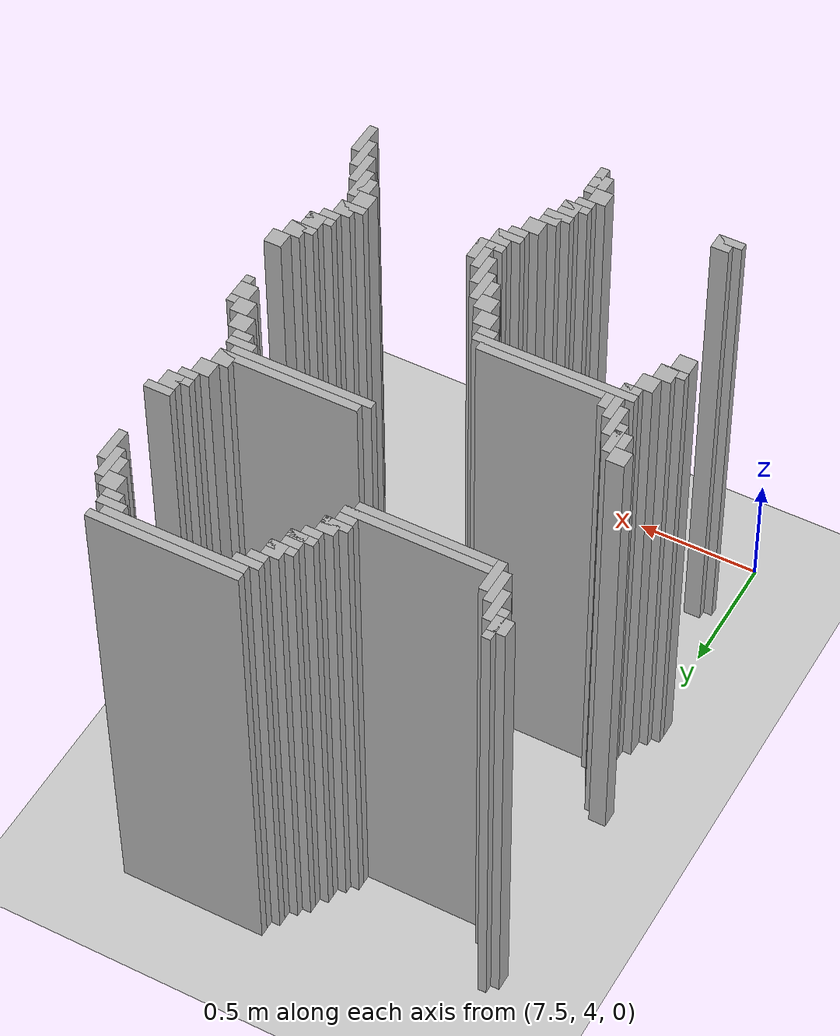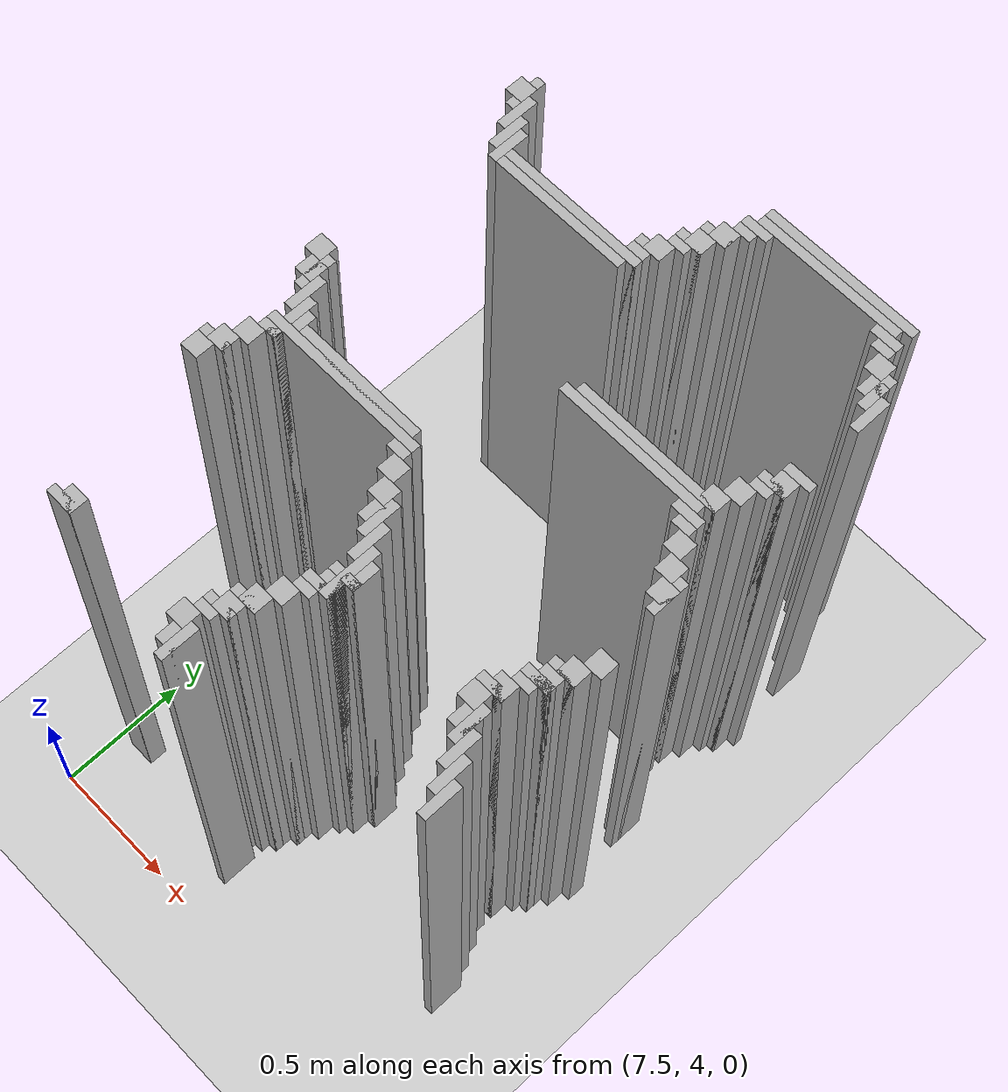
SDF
<sdf version="1.6">
 <world name="slam_world">
  <model name="ground_plane">
   <static>true</static>
   <link name="link">
    <collision name="collision">
     <geometry><plane><normal>0 0 1</normal><size>100 100</size></plane></geometry>
    </collision>
    <visual name="visual">
     <geometry><plane><normal>0 0 1</normal><size>100 100</size></plane></geometry>
     <material>
      <ambient>0.8 0.8 0.8 1</ambient>
      <diffuse>0.8 0.8 0.8 1</diffuse>
      <specular>0.8 0.8 0.8 1</specular>
     </material>
    </visual>
   </link>
  </model>
  <model name="wall_3694">
   <static>true</static>
   <pose>8.61368909512761 6.421113689095128 1.0 0 0 0</pose>
   <link name="link">
    <collision name="collision">
     <geometry><box><size>0.5916473317865429 0.03480278422273782 2.0</size></box></geometry>
    </collision>
    <visual name="visual">
     <geometry><box><size>0.5916473317865429 0.03480278422273782 2.0</size></box></geometry>
     <material><ambient>0.5 0.5 0.5 1</ambient><diffuse>0.7 0.7 0.7 1</diffuse></material>
    </visual>
   </link>
  </model>
  <model name="wall_3705">
   <static>true</static>
   <pose>8.596287703016241 6.386310904872389 1.0 0 0 0</pose>
   <link name="link">
    <collision name="collision">
     <geometry><box><size>0.5568445475638051 0.03480278422273782 2.0</size></box></geometry>
    </collision>
    <visual name="visual">
     <geometry><box><size>0.5568445475638051 0.03480278422273782 2.0</size></box></geometry>
     <material><ambient>0.5 0.5 0.5 1</ambient><diffuse>0.7 0.7 0.7 1</diffuse></material>
    </visual>
   </link>
  </model>
  <model name="wall_3719">
   <static>true</static>
   <pose>8.335266821345707 6.351508120649652 1.0 0 0 0</pose>
   <link name="link">
    <collision name="collision">
     <geometry><box><size>0.10440835266821345 0.03480278422273782 2.0</size></box></geometry>
    </collision>
    <visual name="visual">
     <geometry><box><size>0.10440835266821345 0.03480278422273782 2.0</size></box></geometry>
     <material><ambient>0.5 0.5 0.5 1</ambient><diffuse>0.7 0.7 0.7 1</diffuse></material>
    </visual>
   </link>
  </model>
  <model name="wall_3720">
   <static>true</static>
   <pose>8.857308584686775 6.351508120649652 1.0 0 0 0</pose>
   <link name="link">
    <collision name="collision">
     <geometry><box><size>0.10440835266821345 0.03480278422273782 2.0</size></box></geometry>
    </collision>
    <visual name="visual">
     <geometry><box><size>0.10440835266821345 0.03480278422273782 2.0</size></box></geometry>
     <material><ambient>0.5 0.5 0.5 1</ambient><diffuse>0.7 0.7 0.7 1</diffuse></material>
    </visual>
   </link>
  </model>
  <model name="wall_3732">
   <static>true</static>
   <pose>8.317865429234338 6.316705336426914 1.0 0 0 0</pose>
   <link name="link">
    <collision name="collision">
     <geometry><box><size>0.06960556844547564 0.03480278422273782 2.0</size></box></geometry>
    </collision>
    <visual name="visual">
     <geometry><box><size>0.06960556844547564 0.03480278422273782 2.0</size></box></geometry>
     <material><ambient>0.5 0.5 0.5 1</ambient><diffuse>0.7 0.7 0.7 1</diffuse></material>
    </visual>
   </link>
  </model>
  <model name="wall_3733">
   <static>true</static>
   <pose>8.874709976798144 6.316705336426914 1.0 0 0 0</pose>
   <link name="link">
    <collision name="collision">
     <geometry><box><size>0.06960556844547564 0.03480278422273782 2.0</size></box></geometry>
    </collision>
    <visual name="visual">
     <geometry><box><size>0.06960556844547564 0.03480278422273782 2.0</size></box></geometry>
     <material><ambient>0.5 0.5 0.5 1</ambient><diffuse>0.7 0.7 0.7 1</diffuse></material>
    </visual>
   </link>
  </model>
  <model name="wall_3746">
   <static>true</static>
   <pose>8.2830626450116 6.2645011600928076 1.0 0 0 0</pose>
   <link name="link">
    <collision name="collision">
     <geometry><box><size>0.06960556844547564 0.06960556844547564 2.0</size></box></geometry>
    </collision>
    <visual name="visual">
     <geometry><box><size>0.06960556844547564 0.06960556844547564 2.0</size></box></geometry>
     <material><ambient>0.5 0.5 0.5 1</ambient><diffuse>0.7 0.7 0.7 1</diffuse></material>
    </visual>
   </link>
  </model>
  <model name="wall_3747">
   <static>true</static>
   <pose>8.909512761020881 6.2645011600928076 1.0 0 0 0</pose>
   <link name="link">
    <collision name="collision">
     <geometry><box><size>0.06960556844547564 0.06960556844547564 2.0</size></box></geometry>
    </collision>
    <visual name="visual">
     <geometry><box><size>0.06960556844547564 0.06960556844547564 2.0</size></box></geometry>
     <material><ambient>0.5 0.5 0.5 1</ambient><diffuse>0.7 0.7 0.7 1</diffuse></material>
    </visual>
   </link>
  </model>
  <model name="wall_3763">
   <static>true</static>
   <pose>7.5 6.194895591647332 1.0 0 0 0</pose>
   <link name="link">
    <collision name="collision">
     <geometry><box><size>0.03480278422273782 0.13921113689095127 2.0</size></box></geometry>
    </collision>
    <visual name="visual">
     <geometry><box><size>0.03480278422273782 0.13921113689095127 2.0</size></box></geometry>
     <material><ambient>0.5 0.5 0.5 1</ambient><diffuse>0.7 0.7 0.7 1</diffuse></material>
    </visual>
   </link>
  </model>
  <model name="wall_3764">
   <static>true</static>
   <pose>8.265661252900232 6.247099767981438 1.0 0 0 0</pose>
   <link name="link">
    <collision name="collision">
     <geometry><box><size>0.10440835266821345 0.03480278422273782 2.0</size></box></geometry>
    </collision>
    <visual name="visual">
     <geometry><box><size>0.10440835266821345 0.03480278422273782 2.0</size></box></geometry>
     <material><ambient>0.5 0.5 0.5 1</ambient><diffuse>0.7 0.7 0.7 1</diffuse></material>
    </visual>
   </link>
  </model>
  <model name="wall_3765">
   <static>true</static>
   <pose>8.961716937354987 6.194895591647332 1.0 0 0 0</pose>
   <link name="link">
    <collision name="collision">
     <geometry><box><size>0.03480278422273782 0.13921113689095127 2.0</size></box></geometry>
    </collision>
    <visual name="visual">
     <geometry><box><size>0.03480278422273782 0.13921113689095127 2.0</size></box></geometry>
     <material><ambient>0.5 0.5 0.5 1</ambient><diffuse>0.7 0.7 0.7 1</diffuse></material>
    </visual>
   </link>
  </model>
  <model name="wall_3781">
   <static>true</static>
   <pose>7.48259860788863 6.194895591647332 1.0 0 0 0</pose>
   <link name="link">
    <collision name="collision">
     <geometry><box><size>0.06960556844547564 0.06960556844547564 2.0</size></box></geometry>
    </collision>
    <visual name="visual">
     <geometry><box><size>0.06960556844547564 0.06960556844547564 2.0</size></box></geometry>
     <material><ambient>0.5 0.5 0.5 1</ambient><diffuse>0.7 0.7 0.7 1</diffuse></material>
    </visual>
   </link>
  </model>
  <model name="wall_3782">
   <static>true</static>
   <pose>8.248259860788863 6.194895591647332 1.0 0 0 0</pose>
   <link name="link">
    <collision name="collision">
     <geometry><box><size>0.06960556844547564 0.06960556844547564 2.0</size></box></geometry>
    </collision>
    <visual name="visual">
     <geometry><box><size>0.06960556844547564 0.06960556844547564 2.0</size></box></geometry>
     <material><ambient>0.5 0.5 0.5 1</ambient><diffuse>0.7 0.7 0.7 1</diffuse></material>
    </visual>
   </link>
  </model>
  <model name="wall_3783">
   <static>true</static>
   <pose>8.944315545243619 6.194895591647332 1.0 0 0 0</pose>
   <link name="link">
    <collision name="collision">
     <geometry><box><size>0.06960556844547564 0.06960556844547564 2.0</size></box></geometry>
    </collision>
    <visual name="visual">
     <geometry><box><size>0.06960556844547564 0.06960556844547564 2.0</size></box></geometry>
     <material><ambient>0.5 0.5 0.5 1</ambient><diffuse>0.7 0.7 0.7 1</diffuse></material>
    </visual>
   </link>
  </model>
  <model name="wall_3799">
   <static>true</static>
   <pose>7.534802784222737 6.125290023201856 1.0 0 0 0</pose>
   <link name="link">
    <collision name="collision">
     <geometry><box><size>0.03480278422273782 0.13921113689095127 2.0</size></box></geometry>
    </collision>
    <visual name="visual">
     <geometry><box><size>0.03480278422273782 0.13921113689095127 2.0</size></box></geometry>
     <material><ambient>0.5 0.5 0.5 1</ambient><diffuse>0.7 0.7 0.7 1</diffuse></material>
    </visual>
   </link>
  </model>
  <model name="wall_3800">
   <static>true</static>
   <pose>8.230858468677495 6.177494199535962 1.0 0 0 0</pose>
   <link name="link">
    <collision name="collision">
     <geometry><box><size>0.10440835266821345 0.03480278422273782 2.0</size></box></geometry>
    </collision>
    <visual name="visual">
     <geometry><box><size>0.10440835266821345 0.03480278422273782 2.0</size></box></geometry>
     <material><ambient>0.5 0.5 0.5 1</ambient><diffuse>0.7 0.7 0.7 1</diffuse></material>
    </visual>
   </link>
  </model>
  <model name="wall_3801">
   <static>true</static>
   <pose>8.996519721577727 6.125290023201856 1.0 0 0 0</pose>
   <link name="link">
    <collision name="collision">
     <geometry><box><size>0.03480278422273782 0.13921113689095127 2.0</size></box></geometry>
    </collision>
    <visual name="visual">
     <geometry><box><size>0.03480278422273782 0.13921113689095127 2.0</size></box></geometry>
     <material><ambient>0.5 0.5 0.5 1</ambient><diffuse>0.7 0.7 0.7 1</diffuse></material>
    </visual>
   </link>
  </model>
  <model name="wall_3812">
   <static>true</static>
   <pose>8.213457076566124 6.142691415313225 1.0 0 0 0</pose>
   <link name="link">
    <collision name="collision">
     <geometry><box><size>0.06960556844547564 0.03480278422273782 2.0</size></box></geometry>
    </collision>
    <visual name="visual">
     <geometry><box><size>0.06960556844547564 0.03480278422273782 2.0</size></box></geometry>
     <material><ambient>0.5 0.5 0.5 1</ambient><diffuse>0.7 0.7 0.7 1</diffuse></material>
    </visual>
   </link>
  </model>
  <model name="wall_3826">
   <static>true</static>
   <pose>7.569605568445476 6.05568445475638 1.0 0 0 0</pose>
   <link name="link">
    <collision name="collision">
     <geometry><box><size>0.03480278422273782 0.13921113689095127 2.0</size></box></geometry>
    </collision>
    <visual name="visual">
     <geometry><box><size>0.03480278422273782 0.13921113689095127 2.0</size></box></geometry>
     <material><ambient>0.5 0.5 0.5 1</ambient><diffuse>0.7 0.7 0.7 1</diffuse></material>
    </visual>
   </link>
  </model>
  <model name="wall_3827">
   <static>true</static>
   <pose>8.178654292343387 6.090487238979118 1.0 0 0 0</pose>
   <link name="link">
    <collision name="collision">
     <geometry><box><size>0.06960556844547564 0.06960556844547564 2.0</size></box></geometry>
    </collision>
    <visual name="visual">
     <geometry><box><size>0.06960556844547564 0.06960556844547564 2.0</size></box></geometry>
     <material><ambient>0.5 0.5 0.5 1</ambient><diffuse>0.7 0.7 0.7 1</diffuse></material>
    </visual>
   </link>
  </model>
  <model name="wall_3844">
   <static>true</static>
   <pose>7.604408352668213 6.020881670533642 1.0 0 0 0</pose>
   <link name="link">
    <collision name="collision">
     <geometry><box><size>0.03480278422273782 0.13921113689095127 2.0</size></box></geometry>
    </collision>
    <visual name="visual">
     <geometry><box><size>0.03480278422273782 0.13921113689095127 2.0</size></box></geometry>
     <material><ambient>0.5 0.5 0.5 1</ambient><diffuse>0.7 0.7 0.7 1</diffuse></material>
    </visual>
   </link>
  </model>
  <model name="wall_3845">
   <static>true</static>
   <pose>8.161252900232018 6.073085846867749 1.0 0 0 0</pose>
   <link name="link">
    <collision name="collision">
     <geometry><box><size>0.10440835266821345 0.03480278422273782 2.0</size></box></geometry>
    </collision>
    <visual name="visual">
     <geometry><box><size>0.10440835266821345 0.03480278422273782 2.0</size></box></geometry>
     <material><ambient>0.5 0.5 0.5 1</ambient><diffuse>0.7 0.7 0.7 1</diffuse></material>
    </visual>
   </link>
  </model>
  <model name="wall_3857">
   <static>true</static>
   <pose>8.14385150812065 6.020881670533642 1.0 0 0 0</pose>
   <link name="link">
    <collision name="collision">
     <geometry><box><size>0.06960556844547564 0.06960556844547564 2.0</size></box></geometry>
    </collision>
    <visual name="visual">
     <geometry><box><size>0.06960556844547564 0.06960556844547564 2.0</size></box></geometry>
     <material><ambient>0.5 0.5 0.5 1</ambient><diffuse>0.7 0.7 0.7 1</diffuse></material>
    </visual>
   </link>
  </model>
  <model name="wall_3870">
   <static>true</static>
   <pose>7.900232018561485 6.003480278422273 1.0 0 0 0</pose>
   <link name="link">
    <collision name="collision">
     <geometry><box><size>0.5568445475638051 0.03480278422273782 2.0</size></box></geometry>
    </collision>
    <visual name="visual">
     <geometry><box><size>0.5568445475638051 0.03480278422273782 2.0</size></box></geometry>
     <material><ambient>0.5 0.5 0.5 1</ambient><diffuse>0.7 0.7 0.7 1</diffuse></material>
    </visual>
   </link>
  </model>
  <model name="wall_3882">
   <static>true</static>
   <pose>7.882830626450116 5.968677494199536 1.0 0 0 0</pose>
   <link name="link">
    <collision name="collision">
     <geometry><box><size>0.5220417633410672 0.03480278422273782 2.0</size></box></geometry>
    </collision>
    <visual name="visual">
     <geometry><box><size>0.5220417633410672 0.03480278422273782 2.0</size></box></geometry>
     <material><ambient>0.5 0.5 0.5 1</ambient><diffuse>0.7 0.7 0.7 1</diffuse></material>
    </visual>
   </link>
  </model>
  <model name="wall_3920">
   <static>true</static>
   <pose>8.996519721577727 5.8294663573085845 1.0 0 0 0</pose>
   <link name="link">
    <collision name="collision">
     <geometry><box><size>0.10440835266821345 0.03480278422273782 2.0</size></box></geometry>
    </collision>
    <visual name="visual">
     <geometry><box><size>0.10440835266821345 0.03480278422273782 2.0</size></box></geometry>
     <material><ambient>0.5 0.5 0.5 1</ambient><diffuse>0.7 0.7 0.7 1</diffuse></material>
    </visual>
   </link>
  </model>
  <model name="wall_3931">
   <static>true</static>
   <pose>8.979118329466356 5.7772621809744775 1.0 0 0 0</pose>
   <link name="link">
    <collision name="collision">
     <geometry><box><size>0.06960556844547564 0.06960556844547564 2.0</size></box></geometry>
    </collision>
    <visual name="visual">
     <geometry><box><size>0.06960556844547564 0.06960556844547564 2.0</size></box></geometry>
     <material><ambient>0.5 0.5 0.5 1</ambient><diffuse>0.7 0.7 0.7 1</diffuse></material>
    </visual>
   </link>
  </model>
  <model name="wall_3942">
   <static>true</static>
   <pose>8.961716937354987 5.759860788863109 1.0 0 0 0</pose>
   <link name="link">
    <collision name="collision">
     <geometry><box><size>0.10440835266821345 0.03480278422273782 2.0</size></box></geometry>
    </collision>
    <visual name="visual">
     <geometry><box><size>0.10440835266821345 0.03480278422273782 2.0</size></box></geometry>
     <material><ambient>0.5 0.5 0.5 1</ambient><diffuse>0.7 0.7 0.7 1</diffuse></material>
    </visual>
   </link>
  </model>
  <model name="wall_3952">
   <static>true</static>
   <pose>8.944315545243619 5.725058004640371 1.0 0 0 0</pose>
   <link name="link">
    <collision name="collision">
     <geometry><box><size>0.06960556844547564 0.03480278422273782 2.0</size></box></geometry>
    </collision>
    <visual name="visual">
     <geometry><box><size>0.06960556844547564 0.03480278422273782 2.0</size></box></geometry>
     <material><ambient>0.5 0.5 0.5 1</ambient><diffuse>0.7 0.7 0.7 1</diffuse></material>
    </visual>
   </link>
  </model>
  <model name="wall_3962">
   <static>true</static>
   <pose>8.909512761020881 5.672853828306264 1.0 0 0 0</pose>
   <link name="link">
    <collision name="collision">
     <geometry><box><size>0.06960556844547564 0.06960556844547564 2.0</size></box></geometry>
    </collision>
    <visual name="visual">
     <geometry><box><size>0.06960556844547564 0.06960556844547564 2.0</size></box></geometry>
     <material><ambient>0.5 0.5 0.5 1</ambient><diffuse>0.7 0.7 0.7 1</diffuse></material>
    </visual>
   </link>
  </model>
  <model name="wall_3973">
   <static>true</static>
   <pose>8.874709976798144 5.603248259860789 1.0 0 0 0</pose>
   <link name="link">
    <collision name="collision">
     <geometry><box><size>0.06960556844547564 0.06960556844547564 2.0</size></box></geometry>
    </collision>
    <visual name="visual">
     <geometry><box><size>0.06960556844547564 0.06960556844547564 2.0</size></box></geometry>
     <material><ambient>0.5 0.5 0.5 1</ambient><diffuse>0.7 0.7 0.7 1</diffuse></material>
    </visual>
   </link>
  </model>
  <model name="wall_3985">
   <static>true</static>
   <pose>8.631090487238978 5.58584686774942 1.0 0 0 0</pose>
   <link name="link">
    <collision name="collision">
     <geometry><box><size>0.5568445475638051 0.03480278422273782 2.0</size></box></geometry>
    </collision>
    <visual name="visual">
     <geometry><box><size>0.5568445475638051 0.03480278422273782 2.0</size></box></geometry>
     <material><ambient>0.5 0.5 0.5 1</ambient><diffuse>0.7 0.7 0.7 1</diffuse></material>
    </visual>
   </link>
  </model>
  <model name="wall_3997">
   <static>true</static>
   <pose>8.596287703016241 5.551044083526682 1.0 0 0 0</pose>
   <link name="link">
    <collision name="collision">
     <geometry><box><size>0.5568445475638051 0.03480278422273782 2.0</size></box></geometry>
    </collision>
    <visual name="visual">
     <geometry><box><size>0.5568445475638051 0.03480278422273782 2.0</size></box></geometry>
     <material><ambient>0.5 0.5 0.5 1</ambient><diffuse>0.7 0.7 0.7 1</diffuse></material>
    </visual>
   </link>
  </model>
  <model name="wall_4013">
   <static>true</static>
   <pose>8.857308584686775 5.516241299303944 1.0 0 0 0</pose>
   <link name="link">
    <collision name="collision">
     <geometry><box><size>0.10440835266821345 0.03480278422273782 2.0</size></box></geometry>
    </collision>
    <visual name="visual">
     <geometry><box><size>0.10440835266821345 0.03480278422273782 2.0</size></box></geometry>
     <material><ambient>0.5 0.5 0.5 1</ambient><diffuse>0.7 0.7 0.7 1</diffuse></material>
    </visual>
   </link>
  </model>
  <model name="wall_4029">
   <static>true</static>
   <pose>8.874709976798144 5.481438515081206 1.0 0 0 0</pose>
   <link name="link">
    <collision name="collision">
     <geometry><box><size>0.06960556844547564 0.03480278422273782 2.0</size></box></geometry>
    </collision>
    <visual name="visual">
     <geometry><box><size>0.06960556844547564 0.03480278422273782 2.0</size></box></geometry>
     <material><ambient>0.5 0.5 0.5 1</ambient><diffuse>0.7 0.7 0.7 1</diffuse></material>
    </visual>
   </link>
  </model>
  <model name="wall_4044">
   <static>true</static>
   <pose>8.909512761020881 5.4292343387471 1.0 0 0 0</pose>
   <link name="link">
    <collision name="collision">
     <geometry><box><size>0.06960556844547564 0.06960556844547564 2.0</size></box></geometry>
    </collision>
    <visual name="visual">
     <geometry><box><size>0.06960556844547564 0.06960556844547564 2.0</size></box></geometry>
     <material><ambient>0.5 0.5 0.5 1</ambient><diffuse>0.7 0.7 0.7 1</diffuse></material>
    </visual>
   </link>
  </model>
  <model name="wall_4058">
   <static>true</static>
   <pose>7.48259860788863 5.359628770301624 1.0 0 0 0</pose>
   <link name="link">
    <collision name="collision">
     <geometry><box><size>0.06960556844547564 0.06960556844547564 2.0</size></box></geometry>
    </collision>
    <visual name="visual">
     <geometry><box><size>0.06960556844547564 0.06960556844547564 2.0</size></box></geometry>
     <material><ambient>0.5 0.5 0.5 1</ambient><diffuse>0.7 0.7 0.7 1</diffuse></material>
    </visual>
   </link>
  </model>
  <model name="wall_4059">
   <static>true</static>
   <pose>8.944315545243619 5.359628770301624 1.0 0 0 0</pose>
   <link name="link">
    <collision name="collision">
     <geometry><box><size>0.06960556844547564 0.06960556844547564 2.0</size></box></geometry>
    </collision>
    <visual name="visual">
     <geometry><box><size>0.06960556844547564 0.06960556844547564 2.0</size></box></geometry>
     <material><ambient>0.5 0.5 0.5 1</ambient><diffuse>0.7 0.7 0.7 1</diffuse></material>
    </visual>
   </link>
  </model>
  <model name="wall_4073">
   <static>true</static>
   <pose>7.534802784222737 5.290023201856148 1.0 0 0 0</pose>
   <link name="link">
    <collision name="collision">
     <geometry><box><size>0.03480278422273782 0.13921113689095127 2.0</size></box></geometry>
    </collision>
    <visual name="visual">
     <geometry><box><size>0.03480278422273782 0.13921113689095127 2.0</size></box></geometry>
     <material><ambient>0.5 0.5 0.5 1</ambient><diffuse>0.7 0.7 0.7 1</diffuse></material>
    </visual>
   </link>
  </model>
  <model name="wall_4074">
   <static>true</static>
   <pose>8.996519721577727 5.290023201856148 1.0 0 0 0</pose>
   <link name="link">
    <collision name="collision">
     <geometry><box><size>0.03480278422273782 0.13921113689095127 2.0</size></box></geometry>
    </collision>
    <visual name="visual">
     <geometry><box><size>0.03480278422273782 0.13921113689095127 2.0</size></box></geometry>
     <material><ambient>0.5 0.5 0.5 1</ambient><diffuse>0.7 0.7 0.7 1</diffuse></material>
    </visual>
   </link>
  </model>
  <model name="wall_4086">
   <static>true</static>
   <pose>7.517401392111369 5.290023201856148 1.0 0 0 0</pose>
   <link name="link">
    <collision name="collision">
     <geometry><box><size>0.06960556844547564 0.06960556844547564 2.0</size></box></geometry>
    </collision>
    <visual name="visual">
     <geometry><box><size>0.06960556844547564 0.06960556844547564 2.0</size></box></geometry>
     <material><ambient>0.5 0.5 0.5 1</ambient><diffuse>0.7 0.7 0.7 1</diffuse></material>
    </visual>
   </link>
  </model>
  <model name="wall_4087">
   <static>true</static>
   <pose>8.979118329466356 5.290023201856148 1.0 0 0 0</pose>
   <link name="link">
    <collision name="collision">
     <geometry><box><size>0.06960556844547564 0.06960556844547564 2.0</size></box></geometry>
    </collision>
    <visual name="visual">
     <geometry><box><size>0.06960556844547564 0.06960556844547564 2.0</size></box></geometry>
     <material><ambient>0.5 0.5 0.5 1</ambient><diffuse>0.7 0.7 0.7 1</diffuse></material>
    </visual>
   </link>
  </model>
  <model name="wall_4099">
   <static>true</static>
   <pose>7.569605568445476 5.220417633410673 1.0 0 0 0</pose>
   <link name="link">
    <collision name="collision">
     <geometry><box><size>0.03480278422273782 0.13921113689095127 2.0</size></box></geometry>
    </collision>
    <visual name="visual">
     <geometry><box><size>0.03480278422273782 0.13921113689095127 2.0</size></box></geometry>
     <material><ambient>0.5 0.5 0.5 1</ambient><diffuse>0.7 0.7 0.7 1</diffuse></material>
    </visual>
   </link>
  </model>
  <model name="wall_4122">
   <static>true</static>
   <pose>7.604408352668213 5.133410672853828 1.0 0 0 0</pose>
   <link name="link">
    <collision name="collision">
     <geometry><box><size>0.03480278422273782 0.17401392111368907 2.0</size></box></geometry>
    </collision>
    <visual name="visual">
     <geometry><box><size>0.03480278422273782 0.17401392111368907 2.0</size></box></geometry>
     <material><ambient>0.5 0.5 0.5 1</ambient><diffuse>0.7 0.7 0.7 1</diffuse></material>
    </visual>
   </link>
  </model>
  <model name="wall_4137">
   <static>true</static>
   <pose>7.6392111368909505 5.133410672853828 1.0 0 0 0</pose>
   <link name="link">
    <collision name="collision">
     <geometry><box><size>0.03480278422273782 0.10440835266821345 2.0</size></box></geometry>
    </collision>
    <visual name="visual">
     <geometry><box><size>0.03480278422273782 0.10440835266821345 2.0</size></box></geometry>
     <material><ambient>0.5 0.5 0.5 1</ambient><diffuse>0.7 0.7 0.7 1</diffuse></material>
    </visual>
   </link>
  </model>
  <model name="wall_4152">
   <static>true</static>
   <pose>7.900232018561485 5.1160092807424595 1.0 0 0 0</pose>
   <link name="link">
    <collision name="collision">
     <geometry><box><size>0.4872389791183295 0.06960556844547564 2.0</size></box></geometry>
    </collision>
    <visual name="visual">
     <geometry><box><size>0.4872389791183295 0.06960556844547564 2.0</size></box></geometry>
     <material><ambient>0.5 0.5 0.5 1</ambient><diffuse>0.7 0.7 0.7 1</diffuse></material>
    </visual>
   </link>
  </model>
  <model name="wall_4163">
   <static>true</static>
   <pose>7.865429234338746 5.09860788863109 1.0 0 0 0</pose>
   <link name="link">
    <collision name="collision">
     <geometry><box><size>0.6264501160092807 0.03480278422273782 2.0</size></box></geometry>
    </collision>
    <visual name="visual">
     <geometry><box><size>0.6264501160092807 0.03480278422273782 2.0</size></box></geometry>
     <material><ambient>0.5 0.5 0.5 1</ambient><diffuse>0.7 0.7 0.7 1</diffuse></material>
    </visual>
   </link>
  </model>
  <model name="wall_4177">
   <static>true</static>
   <pose>7.587006960556844 5.0638051044083525 1.0 0 0 0</pose>
   <link name="link">
    <collision name="collision">
     <geometry><box><size>0.06960556844547564 0.03480278422273782 2.0</size></box></geometry>
    </collision>
    <visual name="visual">
     <geometry><box><size>0.06960556844547564 0.03480278422273782 2.0</size></box></geometry>
     <material><ambient>0.5 0.5 0.5 1</ambient><diffuse>0.7 0.7 0.7 1</diffuse></material>
    </visual>
   </link>
  </model>
  <model name="wall_4178">
   <static>true</static>
   <pose>8.14385150812065 5.0638051044083525 1.0 0 0 0</pose>
   <link name="link">
    <collision name="collision">
     <geometry><box><size>0.06960556844547564 0.03480278422273782 2.0</size></box></geometry>
    </collision>
    <visual name="visual">
     <geometry><box><size>0.06960556844547564 0.03480278422273782 2.0</size></box></geometry>
     <material><ambient>0.5 0.5 0.5 1</ambient><diffuse>0.7 0.7 0.7 1</diffuse></material>
    </visual>
   </link>
  </model>
  <model name="wall_4192">
   <static>true</static>
   <pose>7.552204176334106 5.0116009280742455 1.0 0 0 0</pose>
   <link name="link">
    <collision name="collision">
     <geometry><box><size>0.06960556844547564 0.06960556844547564 2.0</size></box></geometry>
    </collision>
    <visual name="visual">
     <geometry><box><size>0.06960556844547564 0.06960556844547564 2.0</size></box></geometry>
     <material><ambient>0.5 0.5 0.5 1</ambient><diffuse>0.7 0.7 0.7 1</diffuse></material>
    </visual>
   </link>
  </model>
  <model name="wall_4193">
   <static>true</static>
   <pose>8.178654292343387 5.0116009280742455 1.0 0 0 0</pose>
   <link name="link">
    <collision name="collision">
     <geometry><box><size>0.06960556844547564 0.06960556844547564 2.0</size></box></geometry>
    </collision>
    <visual name="visual">
     <geometry><box><size>0.06960556844547564 0.06960556844547564 2.0</size></box></geometry>
     <material><ambient>0.5 0.5 0.5 1</ambient><diffuse>0.7 0.7 0.7 1</diffuse></material>
    </visual>
   </link>
  </model>
  <model name="wall_4194">
   <static>true</static>
   <pose>9.013921113689095 5.0116009280742455 1.0 0 0 0</pose>
   <link name="link">
    <collision name="collision">
     <geometry><box><size>0.06960556844547564 0.06960556844547564 2.0</size></box></geometry>
    </collision>
    <visual name="visual">
     <geometry><box><size>0.06960556844547564 0.06960556844547564 2.0</size></box></geometry>
     <material><ambient>0.5 0.5 0.5 1</ambient><diffuse>0.7 0.7 0.7 1</diffuse></material>
    </visual>
   </link>
  </model>
  <model name="wall_4207">
   <static>true</static>
   <pose>7.517401392111369 4.94199535962877 1.0 0 0 0</pose>
   <link name="link">
    <collision name="collision">
     <geometry><box><size>0.06960556844547564 0.06960556844547564 2.0</size></box></geometry>
    </collision>
    <visual name="visual">
     <geometry><box><size>0.06960556844547564 0.06960556844547564 2.0</size></box></geometry>
     <material><ambient>0.5 0.5 0.5 1</ambient><diffuse>0.7 0.7 0.7 1</diffuse></material>
    </visual>
   </link>
  </model>
  <model name="wall_4208">
   <static>true</static>
   <pose>8.213457076566124 4.94199535962877 1.0 0 0 0</pose>
   <link name="link">
    <collision name="collision">
     <geometry><box><size>0.06960556844547564 0.06960556844547564 2.0</size></box></geometry>
    </collision>
    <visual name="visual">
     <geometry><box><size>0.06960556844547564 0.06960556844547564 2.0</size></box></geometry>
     <material><ambient>0.5 0.5 0.5 1</ambient><diffuse>0.7 0.7 0.7 1</diffuse></material>
    </visual>
   </link>
  </model>
  <model name="wall_4209">
   <static>true</static>
   <pose>8.979118329466356 4.94199535962877 1.0 0 0 0</pose>
   <link name="link">
    <collision name="collision">
     <geometry><box><size>0.06960556844547564 0.06960556844547564 2.0</size></box></geometry>
    </collision>
    <visual name="visual">
     <geometry><box><size>0.06960556844547564 0.06960556844547564 2.0</size></box></geometry>
     <material><ambient>0.5 0.5 0.5 1</ambient><diffuse>0.7 0.7 0.7 1</diffuse></material>
    </visual>
   </link>
  </model>
  <model name="wall_4222">
   <static>true</static>
   <pose>7.5 4.924593967517401 1.0 0 0 0</pose>
   <link name="link">
    <collision name="collision">
     <geometry><box><size>0.10440835266821345 0.03480278422273782 2.0</size></box></geometry>
    </collision>
    <visual name="visual">
     <geometry><box><size>0.10440835266821345 0.03480278422273782 2.0</size></box></geometry>
     <material><ambient>0.5 0.5 0.5 1</ambient><diffuse>0.7 0.7 0.7 1</diffuse></material>
    </visual>
   </link>
  </model>
  <model name="wall_4223">
   <static>true</static>
   <pose>8.265661252900232 4.872389791183294 1.0 0 0 0</pose>
   <link name="link">
    <collision name="collision">
     <geometry><box><size>0.03480278422273782 0.13921113689095127 2.0</size></box></geometry>
    </collision>
    <visual name="visual">
     <geometry><box><size>0.03480278422273782 0.13921113689095127 2.0</size></box></geometry>
     <material><ambient>0.5 0.5 0.5 1</ambient><diffuse>0.7 0.7 0.7 1</diffuse></material>
    </visual>
   </link>
  </model>
  <model name="wall_4224">
   <static>true</static>
   <pose>8.961716937354987 4.924593967517401 1.0 0 0 0</pose>
   <link name="link">
    <collision name="collision">
     <geometry><box><size>0.10440835266821345 0.03480278422273782 2.0</size></box></geometry>
    </collision>
    <visual name="visual">
     <geometry><box><size>0.10440835266821345 0.03480278422273782 2.0</size></box></geometry>
     <material><ambient>0.5 0.5 0.5 1</ambient><diffuse>0.7 0.7 0.7 1</diffuse></material>
    </visual>
   </link>
  </model>
  <model name="wall_4235">
   <static>true</static>
   <pose>7.48259860788863 4.872389791183294 1.0 0 0 0</pose>
   <link name="link">
    <collision name="collision">
     <geometry><box><size>0.06960556844547564 0.06960556844547564 2.0</size></box></geometry>
    </collision>
    <visual name="visual">
     <geometry><box><size>0.06960556844547564 0.06960556844547564 2.0</size></box></geometry>
     <material><ambient>0.5 0.5 0.5 1</ambient><diffuse>0.7 0.7 0.7 1</diffuse></material>
    </visual>
   </link>
  </model>
  <model name="wall_4236">
   <static>true</static>
   <pose>8.248259860788863 4.872389791183294 1.0 0 0 0</pose>
   <link name="link">
    <collision name="collision">
     <geometry><box><size>0.06960556844547564 0.06960556844547564 2.0</size></box></geometry>
    </collision>
    <visual name="visual">
     <geometry><box><size>0.06960556844547564 0.06960556844547564 2.0</size></box></geometry>
     <material><ambient>0.5 0.5 0.5 1</ambient><diffuse>0.7 0.7 0.7 1</diffuse></material>
    </visual>
   </link>
  </model>
  <model name="wall_4237">
   <static>true</static>
   <pose>8.944315545243619 4.872389791183294 1.0 0 0 0</pose>
   <link name="link">
    <collision name="collision">
     <geometry><box><size>0.06960556844547564 0.06960556844547564 2.0</size></box></geometry>
    </collision>
    <visual name="visual">
     <geometry><box><size>0.06960556844547564 0.06960556844547564 2.0</size></box></geometry>
     <material><ambient>0.5 0.5 0.5 1</ambient><diffuse>0.7 0.7 0.7 1</diffuse></material>
    </visual>
   </link>
  </model>
  <model name="wall_4249">
   <static>true</static>
   <pose>8.30046403712297 4.802784222737819 1.0 0 0 0</pose>
   <link name="link">
    <collision name="collision">
     <geometry><box><size>0.03480278422273782 0.13921113689095127 2.0</size></box></geometry>
    </collision>
    <visual name="visual">
     <geometry><box><size>0.03480278422273782 0.13921113689095127 2.0</size></box></geometry>
     <material><ambient>0.5 0.5 0.5 1</ambient><diffuse>0.7 0.7 0.7 1</diffuse></material>
    </visual>
   </link>
  </model>
  <model name="wall_4250">
   <static>true</static>
   <pose>8.92691415313225 4.854988399071925 1.0 0 0 0</pose>
   <link name="link">
    <collision name="collision">
     <geometry><box><size>0.10440835266821345 0.03480278422273782 2.0</size></box></geometry>
    </collision>
    <visual name="visual">
     <geometry><box><size>0.10440835266821345 0.03480278422273782 2.0</size></box></geometry>
     <material><ambient>0.5 0.5 0.5 1</ambient><diffuse>0.7 0.7 0.7 1</diffuse></material>
    </visual>
   </link>
  </model>
  <model name="wall_4261">
   <static>true</static>
   <pose>8.909512761020881 4.820185614849188 1.0 0 0 0</pose>
   <link name="link">
    <collision name="collision">
     <geometry><box><size>0.06960556844547564 0.03480278422273782 2.0</size></box></geometry>
    </collision>
    <visual name="visual">
     <geometry><box><size>0.06960556844547564 0.03480278422273782 2.0</size></box></geometry>
     <material><ambient>0.5 0.5 0.5 1</ambient><diffuse>0.7 0.7 0.7 1</diffuse></material>
    </visual>
   </link>
  </model>
  <model name="wall_4273">
   <static>true</static>
   <pose>8.335266821345707 4.698375870069605 1.0 0 0 0</pose>
   <link name="link">
    <collision name="collision">
     <geometry><box><size>0.03480278422273782 0.2088167053364269 2.0</size></box></geometry>
    </collision>
    <visual name="visual">
     <geometry><box><size>0.03480278422273782 0.2088167053364269 2.0</size></box></geometry>
     <material><ambient>0.5 0.5 0.5 1</ambient><diffuse>0.7 0.7 0.7 1</diffuse></material>
    </visual>
   </link>
  </model>
  <model name="wall_4274">
   <static>true</static>
   <pose>8.874709976798144 4.767981438515081 1.0 0 0 0</pose>
   <link name="link">
    <collision name="collision">
     <geometry><box><size>0.06960556844547564 0.06960556844547564 2.0</size></box></geometry>
    </collision>
    <visual name="visual">
     <geometry><box><size>0.06960556844547564 0.06960556844547564 2.0</size></box></geometry>
     <material><ambient>0.5 0.5 0.5 1</ambient><diffuse>0.7 0.7 0.7 1</diffuse></material>
    </visual>
   </link>
  </model>
  <model name="wall_4285">
   <static>true</static>
   <pose>8.370069605568444 4.715777262180974 1.0 0 0 0</pose>
   <link name="link">
    <collision name="collision">
     <geometry><box><size>0.03480278422273782 0.10440835266821345 2.0</size></box></geometry>
    </collision>
    <visual name="visual">
     <geometry><box><size>0.03480278422273782 0.10440835266821345 2.0</size></box></geometry>
     <material><ambient>0.5 0.5 0.5 1</ambient><diffuse>0.7 0.7 0.7 1</diffuse></material>
    </visual>
   </link>
  </model>
  <model name="wall_4286">
   <static>true</static>
   <pose>8.857308584686775 4.750580046403712 1.0 0 0 0</pose>
   <link name="link">
    <collision name="collision">
     <geometry><box><size>0.10440835266821345 0.03480278422273782 2.0</size></box></geometry>
    </collision>
    <visual name="visual">
     <geometry><box><size>0.10440835266821345 0.03480278422273782 2.0</size></box></geometry>
     <material><ambient>0.5 0.5 0.5 1</ambient><diffuse>0.7 0.7 0.7 1</diffuse></material>
    </visual>
   </link>
  </model>
  <model name="wall_4299">
   <static>true</static>
   <pose>8.839907192575406 4.698375870069605 1.0 0 0 0</pose>
   <link name="link">
    <collision name="collision">
     <geometry><box><size>0.06960556844547564 0.06960556844547564 2.0</size></box></geometry>
    </collision>
    <visual name="visual">
     <geometry><box><size>0.06960556844547564 0.06960556844547564 2.0</size></box></geometry>
     <material><ambient>0.5 0.5 0.5 1</ambient><diffuse>0.7 0.7 0.7 1</diffuse></material>
    </visual>
   </link>
  </model>
  <model name="wall_4309">
   <static>true</static>
   <pose>8.335266821345707 4.6809744779582365 1.0 0 0 0</pose>
   <link name="link">
    <collision name="collision">
     <geometry><box><size>0.10440835266821345 0.03480278422273782 2.0</size></box></geometry>
    </collision>
    <visual name="visual">
     <geometry><box><size>0.10440835266821345 0.03480278422273782 2.0</size></box></geometry>
     <material><ambient>0.5 0.5 0.5 1</ambient><diffuse>0.7 0.7 0.7 1</diffuse></material>
    </visual>
   </link>
  </model>
  <model name="wall_4310">
   <static>true</static>
   <pose>8.892111368909513 4.6287703016241295 1.0 0 0 0</pose>
   <link name="link">
    <collision name="collision">
     <geometry><box><size>0.03480278422273782 0.13921113689095127 2.0</size></box></geometry>
    </collision>
    <visual name="visual">
     <geometry><box><size>0.03480278422273782 0.13921113689095127 2.0</size></box></geometry>
     <material><ambient>0.5 0.5 0.5 1</ambient><diffuse>0.7 0.7 0.7 1</diffuse></material>
    </visual>
   </link>
  </model>
  <model name="wall_4321">
   <static>true</static>
   <pose>8.317865429234338 4.6287703016241295 1.0 0 0 0</pose>
   <link name="link">
    <collision name="collision">
     <geometry><box><size>0.06960556844547564 0.06960556844547564 2.0</size></box></geometry>
    </collision>
    <visual name="visual">
     <geometry><box><size>0.06960556844547564 0.06960556844547564 2.0</size></box></geometry>
     <material><ambient>0.5 0.5 0.5 1</ambient><diffuse>0.7 0.7 0.7 1</diffuse></material>
    </visual>
   </link>
  </model>
  <model name="wall_4322">
   <static>true</static>
   <pose>8.874709976798144 4.6287703016241295 1.0 0 0 0</pose>
   <link name="link">
    <collision name="collision">
     <geometry><box><size>0.06960556844547564 0.06960556844547564 2.0</size></box></geometry>
    </collision>
    <visual name="visual">
     <geometry><box><size>0.06960556844547564 0.06960556844547564 2.0</size></box></geometry>
     <material><ambient>0.5 0.5 0.5 1</ambient><diffuse>0.7 0.7 0.7 1</diffuse></material>
    </visual>
   </link>
  </model>
  <model name="wall_4334">
   <static>true</static>
   <pose>8.30046403712297 4.611368909512761 1.0 0 0 0</pose>
   <link name="link">
    <collision name="collision">
     <geometry><box><size>0.10440835266821345 0.03480278422273782 2.0</size></box></geometry>
    </collision>
    <visual name="visual">
     <geometry><box><size>0.10440835266821345 0.03480278422273782 2.0</size></box></geometry>
     <material><ambient>0.5 0.5 0.5 1</ambient><diffuse>0.7 0.7 0.7 1</diffuse></material>
    </visual>
   </link>
  </model>
  <model name="wall_4335">
   <static>true</static>
   <pose>8.92691415313225 4.559164733178654 1.0 0 0 0</pose>
   <link name="link">
    <collision name="collision">
     <geometry><box><size>0.03480278422273782 0.13921113689095127 2.0</size></box></geometry>
    </collision>
    <visual name="visual">
     <geometry><box><size>0.03480278422273782 0.13921113689095127 2.0</size></box></geometry>
     <material><ambient>0.5 0.5 0.5 1</ambient><diffuse>0.7 0.7 0.7 1</diffuse></material>
    </visual>
   </link>
  </model>
  <model name="wall_4344">
   <static>true</static>
   <pose>8.2830626450116 4.576566125290023 1.0 0 0 0</pose>
   <link name="link">
    <collision name="collision">
     <geometry><box><size>0.06960556844547564 0.03480278422273782 2.0</size></box></geometry>
    </collision>
    <visual name="visual">
     <geometry><box><size>0.06960556844547564 0.03480278422273782 2.0</size></box></geometry>
     <material><ambient>0.5 0.5 0.5 1</ambient><diffuse>0.7 0.7 0.7 1</diffuse></material>
    </visual>
   </link>
  </model>
  <model name="wall_4355">
   <static>true</static>
   <pose>8.248259860788863 4.524361948955916 1.0 0 0 0</pose>
   <link name="link">
    <collision name="collision">
     <geometry><box><size>0.06960556844547564 0.06960556844547564 2.0</size></box></geometry>
    </collision>
    <visual name="visual">
     <geometry><box><size>0.06960556844547564 0.06960556844547564 2.0</size></box></geometry>
     <material><ambient>0.5 0.5 0.5 1</ambient><diffuse>0.7 0.7 0.7 1</diffuse></material>
    </visual>
   </link>
  </model>
  <model name="wall_4356">
   <static>true</static>
   <pose>8.961716937354987 4.489559164733178 1.0 0 0 0</pose>
   <link name="link">
    <collision name="collision">
     <geometry><box><size>0.03480278422273782 0.13921113689095127 2.0</size></box></geometry>
    </collision>
    <visual name="visual">
     <geometry><box><size>0.03480278422273782 0.13921113689095127 2.0</size></box></geometry>
     <material><ambient>0.5 0.5 0.5 1</ambient><diffuse>0.7 0.7 0.7 1</diffuse></material>
    </visual>
   </link>
  </model>
  <model name="wall_4368">
   <static>true</static>
   <pose>8.213457076566124 4.454756380510441 1.0 0 0 0</pose>
   <link name="link">
    <collision name="collision">
     <geometry><box><size>0.06960556844547564 0.06960556844547564 2.0</size></box></geometry>
    </collision>
    <visual name="visual">
     <geometry><box><size>0.06960556844547564 0.06960556844547564 2.0</size></box></geometry>
     <material><ambient>0.5 0.5 0.5 1</ambient><diffuse>0.7 0.7 0.7 1</diffuse></material>
    </visual>
   </link>
  </model>
  <model name="wall_4369">
   <static>true</static>
   <pose>8.996519721577727 4.419953596287703 1.0 0 0 0</pose>
   <link name="link">
    <collision name="collision">
     <geometry><box><size>0.03480278422273782 0.13921113689095127 2.0</size></box></geometry>
    </collision>
    <visual name="visual">
     <geometry><box><size>0.03480278422273782 0.13921113689095127 2.0</size></box></geometry>
     <material><ambient>0.5 0.5 0.5 1</ambient><diffuse>0.7 0.7 0.7 1</diffuse></material>
    </visual>
   </link>
  </model>
  <model name="wall_4381">
   <static>true</static>
   <pose>8.196055684454755 4.437354988399072 1.0 0 0 0</pose>
   <link name="link">
    <collision name="collision">
     <geometry><box><size>0.10440835266821345 0.03480278422273782 2.0</size></box></geometry>
    </collision>
    <visual name="visual">
     <geometry><box><size>0.10440835266821345 0.03480278422273782 2.0</size></box></geometry>
     <material><ambient>0.5 0.5 0.5 1</ambient><diffuse>0.7 0.7 0.7 1</diffuse></material>
    </visual>
   </link>
  </model>
  <model name="wall_4390">
   <static>true</static>
   <pose>8.178654292343387 4.385150812064965 1.0 0 0 0</pose>
   <link name="link">
    <collision name="collision">
     <geometry><box><size>0.06960556844547564 0.06960556844547564 2.0</size></box></geometry>
    </collision>
    <visual name="visual">
     <geometry><box><size>0.06960556844547564 0.06960556844547564 2.0</size></box></geometry>
     <material><ambient>0.5 0.5 0.5 1</ambient><diffuse>0.7 0.7 0.7 1</diffuse></material>
    </visual>
   </link>
  </model>
  <model name="wall_4400">
   <static>true</static>
   <pose>8.161252900232018 4.367749419953596 1.0 0 0 0</pose>
   <link name="link">
    <collision name="collision">
     <geometry><box><size>0.10440835266821345 0.03480278422273782 2.0</size></box></geometry>
    </collision>
    <visual name="visual">
     <geometry><box><size>0.10440835266821345 0.03480278422273782 2.0</size></box></geometry>
     <material><ambient>0.5 0.5 0.5 1</ambient><diffuse>0.7 0.7 0.7 1</diffuse></material>
    </visual>
   </link>
  </model>
  <model name="wall_4409">
   <static>true</static>
   <pose>8.14385150812065 4.332946635730858 1.0 0 0 0</pose>
   <link name="link">
    <collision name="collision">
     <geometry><box><size>0.06960556844547564 0.03480278422273782 2.0</size></box></geometry>
    </collision>
    <visual name="visual">
     <geometry><box><size>0.06960556844547564 0.03480278422273782 2.0</size></box></geometry>
     <material><ambient>0.5 0.5 0.5 1</ambient><diffuse>0.7 0.7 0.7 1</diffuse></material>
    </visual>
   </link>
  </model>
  <model name="wall_4420">
   <static>true</static>
   <pose>7.621809744779582 4.280742459396752 1.0 0 0 0</pose>
   <link name="link">
    <collision name="collision">
     <geometry><box><size>0.06960556844547564 0.06960556844547564 2.0</size></box></geometry>
    </collision>
    <visual name="visual">
     <geometry><box><size>0.06960556844547564 0.06960556844547564 2.0</size></box></geometry>
     <material><ambient>0.5 0.5 0.5 1</ambient><diffuse>0.7 0.7 0.7 1</diffuse></material>
    </visual>
   </link>
  </model>
  <model name="wall_4421">
   <static>true</static>
   <pose>8.109048723897912 4.280742459396752 1.0 0 0 0</pose>
   <link name="link">
    <collision name="collision">
     <geometry><box><size>0.06960556844547564 0.06960556844547564 2.0</size></box></geometry>
    </collision>
    <visual name="visual">
     <geometry><box><size>0.06960556844547564 0.06960556844547564 2.0</size></box></geometry>
     <material><ambient>0.5 0.5 0.5 1</ambient><diffuse>0.7 0.7 0.7 1</diffuse></material>
    </visual>
   </link>
  </model>
  <model name="wall_4434">
   <static>true</static>
   <pose>7.604408352668213 4.263341067285383 1.0 0 0 0</pose>
   <link name="link">
    <collision name="collision">
     <geometry><box><size>0.10440835266821345 0.03480278422273782 2.0</size></box></geometry>
    </collision>
    <visual name="visual">
     <geometry><box><size>0.10440835266821345 0.03480278422273782 2.0</size></box></geometry>
     <material><ambient>0.5 0.5 0.5 1</ambient><diffuse>0.7 0.7 0.7 1</diffuse></material>
    </visual>
   </link>
  </model>
  <model name="wall_4435">
   <static>true</static>
   <pose>8.161252900232018 4.211136890951276 1.0 0 0 0</pose>
   <link name="link">
    <collision name="collision">
     <geometry><box><size>0.03480278422273782 0.13921113689095127 2.0</size></box></geometry>
    </collision>
    <visual name="visual">
     <geometry><box><size>0.03480278422273782 0.13921113689095127 2.0</size></box></geometry>
     <material><ambient>0.5 0.5 0.5 1</ambient><diffuse>0.7 0.7 0.7 1</diffuse></material>
    </visual>
   </link>
  </model>
  <model name="wall_4449">
   <static>true</static>
   <pose>8.14385150812065 4.211136890951276 1.0 0 0 0</pose>
   <link name="link">
    <collision name="collision">
     <geometry><box><size>0.06960556844547564 0.06960556844547564 2.0</size></box></geometry>
    </collision>
    <visual name="visual">
     <geometry><box><size>0.06960556844547564 0.06960556844547564 2.0</size></box></geometry>
     <material><ambient>0.5 0.5 0.5 1</ambient><diffuse>0.7 0.7 0.7 1</diffuse></material>
    </visual>
   </link>
  </model>
 </world>
</sdf>
